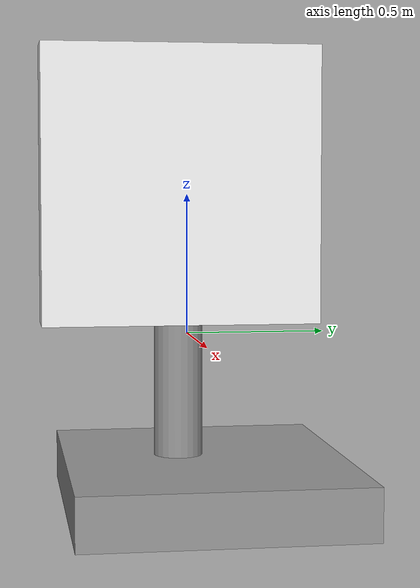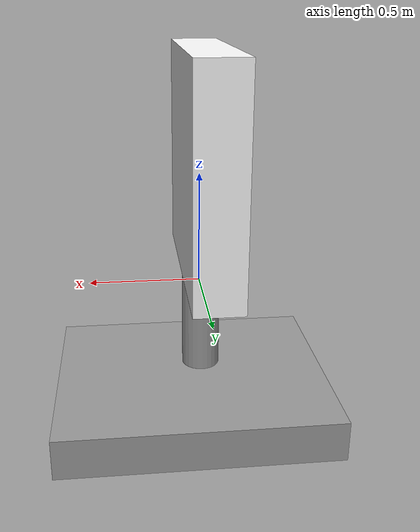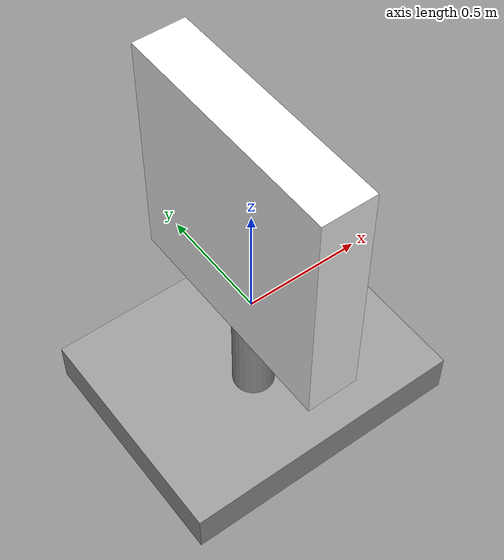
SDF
<?xml version='1.0'?>
<sdf version='1.6'>
  <model name='marker'>
    <link name='link_1'>
      <inertial>
        <mass>0.228668</mass>
        <inertia>
          <ixx>0.0197025</ixx>
          <ixy>0</ixy>
          <ixz>0</ixz>
          <iyy>0.0300022</iyy>
          <iyz>0</iyz>
          <izz>0.0484109</izz>
        </inertia>
        <pose frame=''>0 0 0 0 -0 0</pose>
      </inertial>
      <pose frame=''>0.04242 0.054506 -0.535068 0 -0 0</pose>
      <visual name='visual'>
        <pose frame=''>0 0 0 0 -0 0</pose>
        <geometry>
          <box>
            <size>1.24117 1 0.184247</size>
          </box>
        </geometry>
        <material>
          <lighting>1</lighting>
          <script>
            <uri>file://media/materials/scripts/gazebo.material</uri>
            <name>Gazebo/Grey</name>
          </script>
          <emissive>0 0 0 1</emissive>
        </material>
        <transparency>0</transparency>
        <cast_shadows>1</cast_shadows>
      </visual>
      <collision name='collision'>
        <laser_retro>0</laser_retro>
        <max_contacts>10</max_contacts>
        <pose frame=''>0 0 0 0 -0 0</pose>
        <geometry>
          <box>
            <size>1.24117 1 0.184247</size>
          </box>
        </geometry>
        <surface>
          <friction>
            <ode>
              <mu>1</mu>
              <mu2>1</mu2>
              <fdir1>0 0 0</fdir1>
              <slip1>0</slip1>
              <slip2>0</slip2>
            </ode>
            <torsional>
              <coefficient>1</coefficient>
              <patch_radius>0</patch_radius>
              <surface_radius>0</surface_radius>
              <use_patch_radius>1</use_patch_radius>
              <ode>
                <slip>0</slip>
              </ode>
            </torsional>
          </friction>
          <bounce>
            <restitution_coefficient>0</restitution_coefficient>
            <threshold>1e+06</threshold>
          </bounce>
          <contact>
            <collide_without_contact>0</collide_without_contact>
            <collide_without_contact_bitmask>1</collide_without_contact_bitmask>
            <collide_bitmask>1</collide_bitmask>
            <ode>
              <soft_cfm>0</soft_cfm>
              <soft_erp>0.2</soft_erp>
              <kp>1e+13</kp>
              <kd>1</kd>
              <max_vel>0.01</max_vel>
              <min_depth>0</min_depth>
            </ode>
            <bullet>
              <split_impulse>1</split_impulse>
              <split_impulse_penetration_threshold>-0.01</split_impulse_penetration_threshold>
              <soft_cfm>0</soft_cfm>
              <soft_erp>0.2</soft_erp>
              <kp>1e+13</kp>
              <kd>1</kd>
            </bullet>
          </contact>
        </surface>
      </collision>
    </link>
    <link name='link_2'>
      <inertial>
        <mass>0.030775</mass>
        <inertia>
          <ixx>0.00262378</ixx>
          <ixy>0</ixy>
          <ixz>0</ixz>
          <iyy>0.00262378</iyy>
          <iyz>0</iyz>
          <izz>0.000118387</izz>
        </inertia>
        <pose frame=''>0 0 0 0 -0 0</pose>
      </inertial>
      <pose frame=''>-0.012339 -0.030406 0.00049 0 -0 0</pose>
      <visual name='visual'>
        <pose frame=''>0 0 0 0 -0 0</pose>
        <geometry>
          <cylinder>
            <radius>0.0877138</radius>
            <length>1</length>
          </cylinder>
        </geometry>
        <material>
          <lighting>1</lighting>
          <script>
            <uri>file://media/materials/scripts/gazebo.material</uri>
            <name>Gazebo/Grey</name>
          </script>
          <emissive>0 0 0 1</emissive>
        </material>
        <transparency>0</transparency>
        <cast_shadows>1</cast_shadows>
      </visual>
      <collision name='collision'>
        <laser_retro>0</laser_retro>
        <max_contacts>10</max_contacts>
        <pose frame=''>0 0 0 0 -0 0</pose>
        <geometry>
          <cylinder>
            <radius>0.087714</radius>
            <length>1</length>
          </cylinder>
        </geometry>
        <surface>
          <friction>
            <ode>
              <mu>1</mu>
              <mu2>1</mu2>
              <fdir1>0 0 0</fdir1>
              <slip1>0</slip1>
              <slip2>0</slip2>
            </ode>
            <torsional>
              <coefficient>1</coefficient>
              <patch_radius>0</patch_radius>
              <surface_radius>0</surface_radius>
              <use_patch_radius>1</use_patch_radius>
              <ode>
                <slip>0</slip>
              </ode>
            </torsional>
          </friction>
          <bounce>
            <restitution_coefficient>0</restitution_coefficient>
            <threshold>1e+06</threshold>
          </bounce>
          <contact>
            <collide_without_contact>0</collide_without_contact>
            <collide_without_contact_bitmask>1</collide_without_contact_bitmask>
            <collide_bitmask>1</collide_bitmask>
            <ode>
              <soft_cfm>0</soft_cfm>
              <soft_erp>0.2</soft_erp>
              <kp>1e+13</kp>
              <kd>1</kd>
              <max_vel>0.01</max_vel>
              <min_depth>0</min_depth>
            </ode>
            <bullet>
              <split_impulse>1</split_impulse>
              <split_impulse_penetration_threshold>-0.01</split_impulse_penetration_threshold>
              <soft_cfm>0</soft_cfm>
              <soft_erp>0.2</soft_erp>
              <kp>1e+13</kp>
              <kd>1</kd>
            </bullet>
          </contact>
        </surface>
      </collision>
    </link>
    <link name='link_3'>
      <inertial>
        <mass>0.21905</mass>
        <inertia>
          <ixx>0.0365083</ixx>
          <ixy>0</ixy>
          <ixz>0</ixz>
          <iyy>0.0191299</iyy>
          <iyz>0</iyz>
          <izz>0.0191299</izz>
        </inertia>
        <pose frame=''>0 0 0 0 -0 0</pose>
      </inertial>
      <pose frame=''>-0.030077 -0.024099 0.534578 0 -0 0</pose>
      <visual name='visual'>
        <pose frame=''>0 0 0 0 -0 0</pose>
        <geometry>
          <box>
            <size>0.219027 1 1</size>
          </box>
        </geometry>
        <material>
          <script>
            <uri>file:///home/vedika/catkin_ws/src/urdf_robots/models/marker/media/materials/scripts
</uri>
            <uri>file:///home/vedika/catkin_ws/src/urdf_robots/models/marker/media/textures
</uri>
            <name>aruco/standard_opp</name>
          </script>
          <emissive>0 0 0 1</emissive>
          <shader type='vertex'>
            <normal_map>__default__</normal_map>
          </shader>
          <ambient>1 1 1 1</ambient>
          <diffuse>1 1 1 1</diffuse>
          <specular>0 0 0 1</specular>
        </material>
        <transparency>0</transparency>
        <cast_shadows>1</cast_shadows>
      </visual>
      <collision name='collision'>
        <laser_retro>0</laser_retro>
        <max_contacts>10</max_contacts>
        <pose frame=''>0 0 0 0 -0 0</pose>
        <geometry>
          <box>
            <size>0.219027 1 1</size>
          </box>
        </geometry>
        <surface>
          <friction>
            <ode>
              <mu>1</mu>
              <mu2>1</mu2>
              <fdir1>0 0 0</fdir1>
              <slip1>0</slip1>
              <slip2>0</slip2>
            </ode>
            <torsional>
              <coefficient>1</coefficient>
              <patch_radius>0</patch_radius>
              <surface_radius>0</surface_radius>
              <use_patch_radius>1</use_patch_radius>
              <ode>
                <slip>0</slip>
              </ode>
            </torsional>
          </friction>
          <bounce>
            <restitution_coefficient>0</restitution_coefficient>
            <threshold>1e+06</threshold>
          </bounce>
          <contact>
            <collide_without_contact>0</collide_without_contact>
            <collide_without_contact_bitmask>1</collide_without_contact_bitmask>
            <collide_bitmask>1</collide_bitmask>
            <ode>
              <soft_cfm>0</soft_cfm>
              <soft_erp>0.2</soft_erp>
              <kp>1e+13</kp>
              <kd>1</kd>
              <max_vel>0.01</max_vel>
              <min_depth>0</min_depth>
            </ode>
            <bullet>
              <split_impulse>1</split_impulse>
              <split_impulse_penetration_threshold>-0.01</split_impulse_penetration_threshold>
              <soft_cfm>0</soft_cfm>
              <soft_erp>0.2</soft_erp>
              <kp>1e+13</kp>
              <kd>1</kd>
            </bullet>
          </contact>
        </surface>
      </collision>
    </link>
    <joint name='link_1_JOINT_0' type='fixed'>
      <parent>link_1</parent>
      <child>link_2</child>
      <pose frame=''>0 0 0 0 -0 0</pose>
      <physics>
        <ode>
          <limit>
            <cfm>0</cfm>
            <erp>0.2</erp>
          </limit>
          <suspension>
            <cfm>0</cfm>
            <erp>0.2</erp>
          </suspension>
        </ode>
      </physics>
    </joint>
    <joint name='link_2_JOINT_1' type='fixed'>
      <parent>link_2</parent>
      <child>link_3</child>
      <pose frame=''>0 0 0 0 -0 0</pose>
      <physics>
        <ode>
          <limit>
            <cfm>0</cfm>
            <erp>0.2</erp>
          </limit>
          <suspension>
            <cfm>0</cfm>
            <erp>0.2</erp>
          </suspension>
        </ode>
      </physics>
    </joint>
    <static>0</static>
    <allow_auto_disable>1</allow_auto_disable>
  </model>
</sdf>
